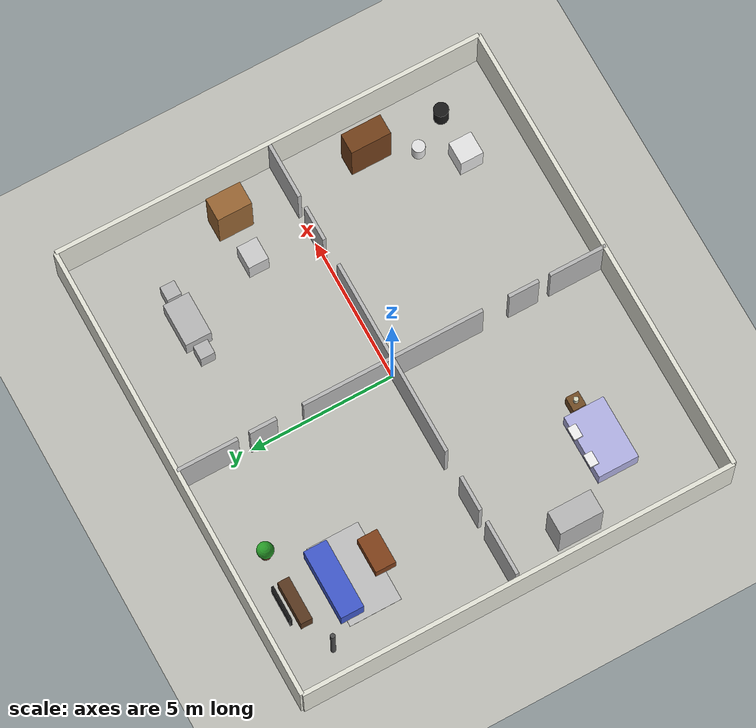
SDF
<?xml version="1.0" ?>
<sdf version="1.8">
  <world name="default">
    <physics name="1ms" type="ignored">
      <max_step_size>0.001</max_step_size>
      <real_time_factor>1.0</real_time_factor>
    </physics>

    <plugin filename="ignition-gazebo-physics-system" name="ignition::gazebo::systems::Physics"/>
    <plugin filename="ignition-gazebo-user-commands-system" name="ignition::gazebo::systems::UserCommands"/>
    <plugin filename="ignition-gazebo-scene-broadcaster-system" name="ignition::gazebo::systems::SceneBroadcaster"/>
    <plugin filename="ignition-gazebo-sensors-system" name="ignition::gazebo::systems::Sensors">
      <render_engine>ogre2</render_engine>
    </plugin>
    <plugin filename="ignition-gazebo-imu-system" name="ignition::gazebo::systems::Imu"/>
    <plugin filename="ignition-gazebo-contact-system" name="ignition::gazebo::systems::Contact"/>

    <light type="directional" name="sun">
      <cast_shadows>true</cast_shadows>
      <pose>0 0 10 0 0 0</pose>
      <diffuse>0.8 0.8 0.8 1</diffuse>
      <specular>0.2 0.2 0.2 1</specular>
      <direction>-0.5 0.1 -0.9</direction>
    </light>

    <model name="ground_plane">
      <static>true</static>
      <link name="link">
        <collision name="collision">
          <geometry><plane><normal>0 0 1</normal><size>20 16</size></plane></geometry>
        </collision>
        <visual name="visual">
          <geometry><plane><normal>0 0 1</normal><size>20 16</size></plane></geometry>
          <material>
            <ambient>0.75 0.75 0.72 1</ambient>
            <diffuse>0.75 0.75 0.72 1</diffuse>
          </material>
        </visual>
      </link>
    </model>

    <!-- Outer walls -->
    <model name="wall_north"><static>true</static><pose>0 7.5 1 0 0 0</pose><link name="link"><collision name="collision"><geometry><box><size>16 0.15 2</size></box></geometry></collision><visual name="visual"><geometry><box><size>16 0.15 2</size></box></geometry><material><ambient>0.9 0.9 0.85 1</ambient><diffuse>0.9 0.9 0.85 1</diffuse></material></visual></link></model>
    <model name="wall_south"><static>true</static><pose>0 -7.5 1 0 0 0</pose><link name="link"><collision name="collision"><geometry><box><size>16 0.15 2</size></box></geometry></collision><visual name="visual"><geometry><box><size>16 0.15 2</size></box></geometry><material><ambient>0.9 0.9 0.85 1</ambient><diffuse>0.9 0.9 0.85 1</diffuse></material></visual></link></model>
    <model name="wall_west"><static>true</static><pose>-8 0 1 0 0 0</pose><link name="link"><collision name="collision"><geometry><box><size>0.15 15 2</size></box></geometry></collision><visual name="visual"><geometry><box><size>0.15 15 2</size></box></geometry><material><ambient>0.9 0.9 0.85 1</ambient><diffuse>0.9 0.9 0.85 1</diffuse></material></visual></link></model>
    <model name="wall_east"><static>true</static><pose>8 0 1 0 0 0</pose><link name="link"><collision name="collision"><geometry><box><size>0.15 15 2</size></box></geometry></collision><visual name="visual"><geometry><box><size>0.15 15 2</size></box></geometry><material><ambient>0.9 0.9 0.85 1</ambient><diffuse>0.9 0.9 0.85 1</diffuse></material></visual></link></model>

    <!-- Inner walls: each has one 915mm door + one 400mm gap -->

    <model name="inner_wall_north_center"><static>true</static><pose>0 1.5703125 1 0 0 0</pose><link name="link"><collision name="collision"><geometry><box><size>0.12 3.140625 2</size></box></geometry></collision><visual name="visual"><geometry><box><size>0.12 3.140625 2</size></box></geometry></visual></link></model>
    <model name="inner_wall_north_outer_bottom"><static>true</static><pose>0 4.526875 1 0 0 0</pose><link name="link"><collision name="collision"><geometry><box><size>0.12 0.9425 2</size></box></geometry></collision><visual name="visual"><geometry><box><size>0.12 0.9425 2</size></box></geometry></visual></link></model>
    <model name="inner_wall_north_outer_top"><static>true</static><pose>0 6.4490625 1 0 0 0</pose><link name="link"><collision name="collision"><geometry><box><size>0.12 2.101875 2</size></box></geometry></collision><visual name="visual"><geometry><box><size>0.12 2.101875 2</size></box></geometry></visual></link></model>

    <model name="inner_wall_south_center"><static>true</static><pose>0 -1.5890625 1 0 0 0</pose><link name="link"><collision name="collision"><geometry><box><size>0.12 3.178125 2</size></box></geometry></collision><visual name="visual"><geometry><box><size>0.12 3.178125 2</size></box></geometry></visual></link></model>
    <model name="inner_wall_south_outer_top"><static>true</static><pose>0 -4.620625 1 0 0 0</pose><link name="link"><collision name="collision"><geometry><box><size>0.12 1.055 2</size></box></geometry></collision><visual name="visual"><geometry><box><size>0.12 1.055 2</size></box></geometry></visual></link></model>
    <model name="inner_wall_south_outer_bottom"><static>true</static><pose>0 -6.5365625 1 0 0 0</pose><link name="link"><collision name="collision"><geometry><box><size>0.12 1.976875 2</size></box></geometry></collision><visual name="visual"><geometry><box><size>0.12 1.976875 2</size></box></geometry></visual></link></model>

    <model name="inner_wall_west_center"><static>true</static><pose>-1.7140625 0 1 0 0 0</pose><link name="link"><collision name="collision"><geometry><box><size>3.428125 0.12 2</size></box></geometry></collision><visual name="visual"><geometry><box><size>3.428125 0.12 2</size></box></geometry></visual></link></model>
    <model name="inner_wall_west_outer_right"><static>true</static><pose>-4.951875 0 1 0 0 0</pose><link name="link"><collision name="collision"><geometry><box><size>1.2175 0.12 2</size></box></geometry></collision><visual name="visual"><geometry><box><size>1.2175 0.12 2</size></box></geometry></visual></link></model>
    <model name="inner_wall_west_outer_left"><static>true</static><pose>-6.9053125 0 1 0 0 0</pose><link name="link"><collision name="collision"><geometry><box><size>1.889375 0.12 2</size></box></geometry></collision><visual name="visual"><geometry><box><size>1.889375 0.12 2</size></box></geometry></visual></link></model>

    <model name="inner_wall_east_center"><static>true</static><pose>1.7265625 0 1 0 0 0</pose><link name="link"><collision name="collision"><geometry><box><size>3.453125 0.12 2</size></box></geometry></collision><visual name="visual"><geometry><box><size>3.453125 0.12 2</size></box></geometry></visual></link></model>
    <model name="inner_wall_east_outer_left"><static>true</static><pose>4.976875 0 1 0 0 0</pose><link name="link"><collision name="collision"><geometry><box><size>1.2175 0.12 2</size></box></geometry></collision><visual name="visual"><geometry><box><size>1.2175 0.12 2</size></box></geometry></visual></link></model>
    <model name="inner_wall_east_outer_right"><static>true</static><pose>6.9678125 0 1 0 0 0</pose><link name="link"><collision name="collision"><geometry><box><size>1.964375 0.12 2</size></box></geometry></collision><visual name="visual"><geometry><box><size>1.964375 0.12 2</size></box></geometry></visual></link></model>

    <!-- Furniture simplified as boxes -->
    <model name="sofa_living_room"><static>true</static><pose>-5 4.8 0.35 0 0 0</pose><link name="link"><collision name="collision"><geometry><box><size>2.4 0.8 0.7</size></box></geometry></collision><visual name="visual"><geometry><box><size>2.4 0.8 0.7</size></box></geometry><material><ambient>0.25 0.35 0.8 1</ambient><diffuse>0.25 0.35 0.8 1</diffuse></material></visual></link></model>
    <model name="coffee_table"><static>true</static><pose>-4.8 3.2 0.25 0 0 0</pose><link name="link"><collision name="collision"><geometry><box><size>1.2 0.7 0.5</size></box></geometry></collision><visual name="visual"><geometry><box><size>1.2 0.7 0.5</size></box></geometry><material><ambient>0.5 0.25 0.1 1</ambient><diffuse>0.5 0.25 0.1 1</diffuse></material></visual></link></model>

    <model name="dining_table"><static>true</static><pose>4.5 4.8 0.4 0 0 0</pose><link name="link"><collision name="collision"><geometry><box><size>1.5 0.9 0.8</size></box></geometry></collision><visual name="visual"><geometry><box><size>1.5 0.9 0.8</size></box></geometry></visual></link></model>
    <model name="chair_1"><static>true</static><pose>3.4 4.8 0.35 0 0 0</pose><link name="link"><collision name="collision"><geometry><box><size>0.5 0.5 0.7</size></box></geometry></collision><visual name="visual"><geometry><box><size>0.5 0.5 0.7</size></box></geometry></visual></link></model>
    <model name="chair_2"><static>true</static><pose>5.6 4.8 0.35 0 0 0</pose><link name="link"><collision name="collision"><geometry><box><size>0.5 0.5 0.7</size></box></geometry></collision><visual name="visual"><geometry><box><size>0.5 0.5 0.7</size></box></geometry></visual></link></model>

    <model name="pantry"><static>true</static><pose>6.9 2.0 1.0 0 0 0</pose><link name="link"><collision name="collision"><geometry><box><size>0.8 1.2 2.0</size></box></geometry></collision><visual name="visual"><geometry><box><size>0.8 1.2 2.0</size></box></geometry><material><ambient>0.6 0.4 0.2 1</ambient><diffuse>0.6 0.4 0.2 1</diffuse></material></visual></link></model>
    <model name="dishwasher"><static>true</static><pose>5.4 2.0 0.45 0 0 0</pose><link name="link"><collision name="collision"><geometry><box><size>0.8 0.7 0.9</size></box></geometry></collision><visual name="visual"><geometry><box><size>0.8 0.7 0.9</size></box></geometry><material><ambient>0.8 0.8 0.8 1</ambient><diffuse>0.8 0.8 0.8 1</diffuse></material></visual></link></model>

    <model name="bed"><static>true</static><pose>-5 -4.6 0.35 0 0 0</pose><link name="link"><collision name="collision"><geometry><box><size>2.2 1.4 0.7</size></box></geometry></collision><visual name="visual"><geometry><box><size>2.2 1.4 0.7</size></box></geometry><material><ambient>0.7 0.7 0.9 1</ambient><diffuse>0.7 0.7 0.9 1</diffuse></material></visual></link></model>
    <model name="wardrobe"><static>true</static><pose>-7 -2.5 1.0 0 0 0</pose><link name="link"><collision name="collision"><geometry><box><size>0.8 1.5 2.0</size></box></geometry></collision><visual name="visual"><geometry><box><size>0.8 1.5 2.0</size></box></geometry></visual></link></model>

    <model name="bookshelf"><static>true</static><pose>6.8 -2.8 1.0 0 0 0</pose><link name="link"><collision name="collision"><geometry><box><size>0.7 1.4 2.0</size></box></geometry></collision><visual name="visual"><geometry><box><size>0.7 1.4 2.0</size></box></geometry><material><ambient>0.45 0.25 0.1 1</ambient><diffuse>0.45 0.25 0.1 1</diffuse></material></visual></link></model>
    <model name="washing_machine"><static>true</static><pose>5.2 -5.5 0.5 0 0 0</pose><link name="link"><collision name="collision"><geometry><box><size>0.8 0.8 1.0</size></box></geometry></collision><visual name="visual"><geometry><box><size>0.8 0.8 1.0</size></box></geometry><material><ambient>0.9 0.9 0.9 1</ambient><diffuse>0.9 0.9 0.9 1</diffuse></material></visual></link></model>
    <model name="trash_bin"><static>true</static><pose>6.8 -5.5 0.35 0 0 0</pose><link name="link"><collision name="collision"><geometry><cylinder><radius>0.25</radius><length>0.7</length></cylinder></geometry></collision><visual name="visual"><geometry><cylinder><radius>0.25</radius><length>0.7</length></cylinder></geometry><material><ambient>0.1 0.1 0.1 1</ambient><diffuse>0.1 0.1 0.1 1</diffuse></material></visual></link></model>
    <model name="rug"><static>true</static><pose>-5 4.1 0.01 0 0 0</pose><link name="link"><collision name="collision"><geometry><box><size>2.8 1.8 0.02</size></box></geometry></collision><visual name="visual"><geometry><box><size>2.8 1.8 0.02</size></box></geometry><material><ambient>0.75 0.75 0.75 1</ambient><diffuse>0.75 0.75 0.75 1</diffuse></material></visual></link></model>
    <model name="floor_lamp"><static>true</static><pose>-6.8 5.8 0.9 0 0 0</pose><link name="link"><collision name="collision"><geometry><cylinder><radius>0.08</radius><length>1.8</length></cylinder></geometry></collision><visual name="visual"><geometry><cylinder><radius>0.08</radius><length>1.8</length></cylinder></geometry><material><ambient>0.3 0.3 0.3 1</ambient><diffuse>0.3 0.3 0.3 1</diffuse></material></visual></link></model>
    <model name="plant_living"><static>true</static><pose>-3.2 6.2 0.35 0 0 0</pose><link name="link"><collision name="pot"><geometry><cylinder><radius>0.18</radius><length>0.35</length></cylinder></geometry></collision><collision name="leaf"><pose>0 0 0.38 0 0 0</pose><geometry><sphere><radius>0.28</radius></sphere></geometry></collision><visual name="pot"><geometry><cylinder><radius>0.18</radius><length>0.35</length></cylinder></geometry><material><ambient>0.45 0.25 0.15 1</ambient><diffuse>0.45 0.25 0.15 1</diffuse></material></visual><visual name="leaf"><pose>0 0 0.38 0 0 0</pose><geometry><sphere><radius>0.28</radius></sphere></geometry><material><ambient>0.15 0.6 0.15 1</ambient><diffuse>0.15 0.6 0.15 1</diffuse></material></visual></link></model>
    <model name="tv"><static>true</static><pose>-5 6.6 0.75 0 0 0</pose><link name="link"><collision name="collision"><geometry><box><size>1.2 0.08 0.7</size></box></geometry></collision><visual name="visual"><geometry><box><size>1.2 0.08 0.7</size></box></geometry><material><ambient>0.08 0.08 0.08 1</ambient><diffuse>0.08 0.08 0.08 1</diffuse></material></visual></link></model>
    <model name="tv_stand"><static>true</static><pose>-5 6.15 0.3 0 0 0</pose><link name="link"><collision name="collision"><geometry><box><size>1.5 0.4 0.6</size></box></geometry></collision><visual name="visual"><geometry><box><size>1.5 0.4 0.6</size></box></geometry><material><ambient>0.35 0.22 0.12 1</ambient><diffuse>0.35 0.22 0.12 1</diffuse></material></visual></link></model>
    <model name="pillow1"><static>true</static><pose>-5.5 -3.95 0.76 0 0 0</pose><link name="link"><collision name="collision"><geometry><box><size>0.45 0.3 0.1</size></box></geometry></collision><visual name="visual"><geometry><box><size>0.45 0.3 0.1</size></box></geometry><material><ambient>0.95 0.95 0.95 1</ambient><diffuse>0.95 0.95 0.95 1</diffuse></material></visual></link></model>
    <model name="pillow2"><static>true</static><pose>-4.5 -3.95 0.76 0 0 0</pose><link name="link"><collision name="collision"><geometry><box><size>0.45 0.3 0.1</size></box></geometry></collision><visual name="visual"><geometry><box><size>0.45 0.3 0.1</size></box></geometry><material><ambient>0.95 0.95 0.95 1</ambient><diffuse>0.95 0.95 0.95 1</diffuse></material></visual></link></model>
    <model name="nightstand"><static>true</static><pose>-3.6 -4.5 0.3 0 0 0</pose><link name="link"><collision name="collision"><geometry><box><size>0.5 0.45 0.6</size></box></geometry></collision><visual name="visual"><geometry><box><size>0.5 0.45 0.6</size></box></geometry><material><ambient>0.45 0.3 0.15 1</ambient><diffuse>0.45 0.3 0.15 1</diffuse></material></visual></link></model>
    <model name="bedside_lamp"><static>true</static><pose>-3.6 -4.5 0.72 0 0 0</pose><link name="link"><collision name="collision"><geometry><cylinder><radius>0.08</radius><length>0.25</length></cylinder></geometry></collision><visual name="visual"><geometry><cylinder><radius>0.08</radius><length>0.25</length></cylinder></geometry><material><ambient>0.85 0.85 0.75 1</ambient><diffuse>0.85 0.85 0.75 1</diffuse></material></visual></link></model>
    <model name="laundry_basket"><static>true</static><pose>6.1 -4.3 0.3 0 0 0</pose><link name="link"><collision name="collision"><geometry><cylinder><radius>0.22</radius><length>0.6</length></cylinder></geometry></collision><visual name="visual"><geometry><cylinder><radius>0.22</radius><length>0.6</length></cylinder></geometry><material><ambient>0.9 0.9 0.9 1</ambient><diffuse>0.9 0.9 0.9 1</diffuse></material></visual></link></model>

  </world>
</sdf>
